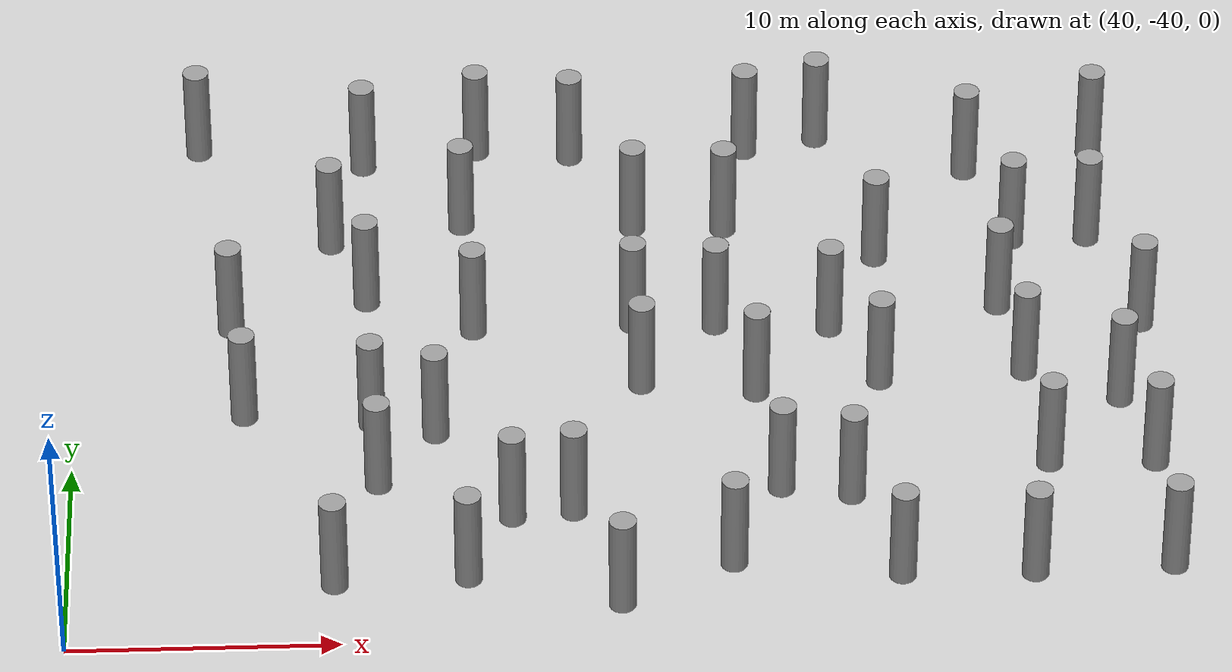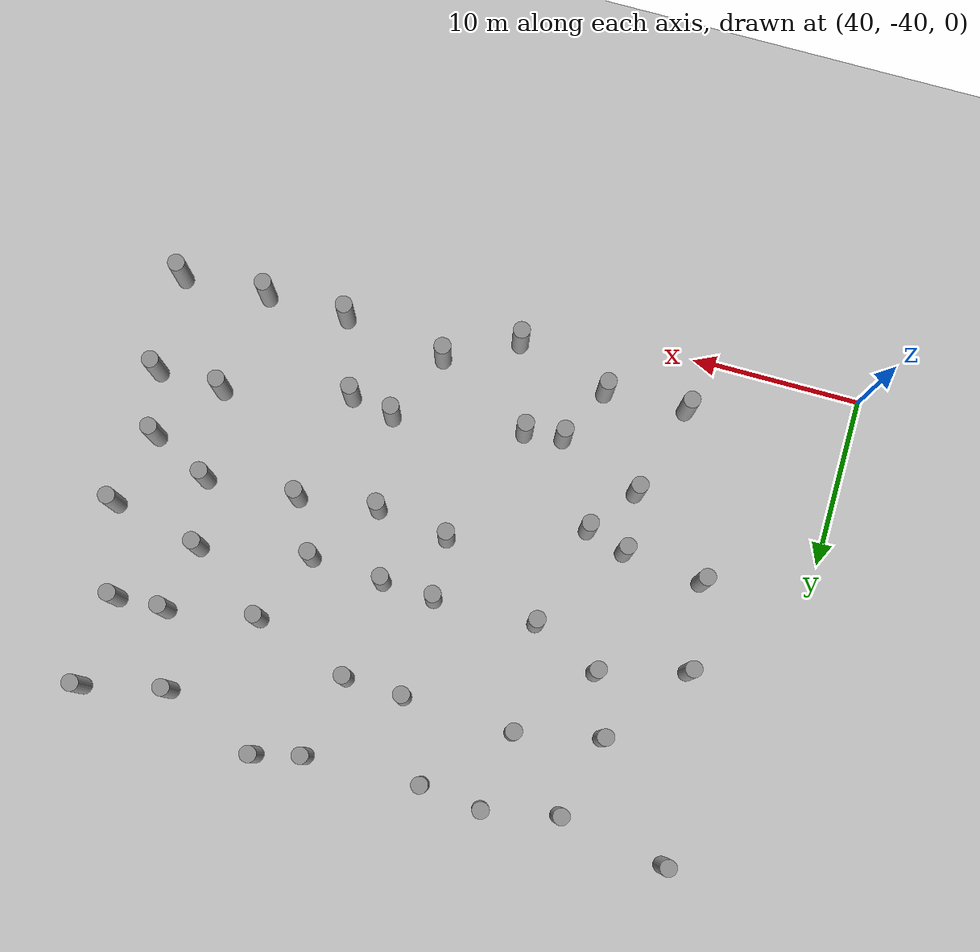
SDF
<sdf version="1.5">
 <world name="circle">
  <model name="ground">
   <static>1</static>
   <link name="link">
    <collision name="collision">
     <geometry><plane><normal>0 0 1</normal><size>100 100</size></plane></geometry>
     <surface><friction><ode><mu>100</mu><mu2>50</mu2></ode></friction></surface>
    </collision>
    <visual name="visual">
     <cast_shadows>0</cast_shadows>
     <geometry><plane><normal>0 0 1</normal><size>100 100</size></plane></geometry>
     <material>
      <script><uri>file://media/materials/scripts/gazebo.material</uri><name>Gazebo/Grey</name></script>
     </material>
    </visual>
    <velocity_decay><linear>0</linear><angular>0</angular></velocity_decay>
   </link>
  </model>
  <model name="unit_cylinder_107">
   <pose>46.3874907189 -27.1581048016 2 3e-06 4e-06 -0</pose>
   <static>1</static>
   <self_collide>1</self_collide>
   <link name="link">
    <inertial>
     <mass>1</mass>
     <inertia><ixx>0.145833</ixx><ixy>0</ixy><ixz>0</ixz><iyy>0.145833</iyy><iyz>0</iyz><izz>0.125</izz></inertia>
    </inertial>
    <collision name="collision">
     <geometry><cylinder><radius>0.5</radius><length>4</length></cylinder></geometry>
    </collision>
    <visual name="visual">
     <geometry><cylinder><radius>0.5</radius><length>4</length></cylinder></geometry>
     <material>
      <script><name>Gazebo/Grey</name><uri>file://media/materials/scripts/gazebo.material</uri></script>
     </material>
    </visual>
    <collision name="cyl_collision">
     <geometry><cylinder><radius>0.5</radius><length>4</length></cylinder></geometry>
    </collision>
    <sensor name="my_contact" type="contact">
     <contact><collision>cyl_collision</collision></contact>
     <update_rate>5</update_rate>
    </sensor>
   </link>
  </model>
  <model name="unit_cylinder_108">
   <pose>45.8426918675 -21.9223942258 2 3e-06 4e-06 -0</pose>
   <static>1</static>
   <self_collide>1</self_collide>
   <link name="link">
    <inertial>
     <mass>1</mass>
     <inertia><ixx>0.145833</ixx><ixy>0</ixy><ixz>0</ixz><iyy>0.145833</iyy><iyz>0</iyz><izz>0.125</izz></inertia>
    </inertial>
    <collision name="collision">
     <geometry><cylinder><radius>0.5</radius><length>4</length></cylinder></geometry>
    </collision>
    <visual name="visual">
     <geometry><cylinder><radius>0.5</radius><length>4</length></cylinder></geometry>
     <material>
      <script><name>Gazebo/Grey</name><uri>file://media/materials/scripts/gazebo.material</uri></script>
     </material>
    </visual>
    <collision name="cyl_collision">
     <geometry><cylinder><radius>0.5</radius><length>4</length></cylinder></geometry>
    </collision>
    <sensor name="my_contact" type="contact">
     <contact><collision>cyl_collision</collision></contact>
     <update_rate>5</update_rate>
    </sensor>
   </link>
  </model>
  <model name="unit_cylinder_110">
   <pose>44.4817383361 -10.8536339094 2 3e-06 4e-06 -0</pose>
   <static>1</static>
   <self_collide>1</self_collide>
   <link name="link">
    <inertial>
     <mass>1</mass>
     <inertia><ixx>0.145833</ixx><ixy>0</ixy><ixz>0</ixz><iyy>0.145833</iyy><iyz>0</iyz><izz>0.125</izz></inertia>
    </inertial>
    <collision name="collision">
     <geometry><cylinder><radius>0.5</radius><length>4</length></cylinder></geometry>
    </collision>
    <visual name="visual">
     <geometry><cylinder><radius>0.5</radius><length>4</length></cylinder></geometry>
     <material>
      <script><name>Gazebo/Grey</name><uri>file://media/materials/scripts/gazebo.material</uri></script>
     </material>
    </visual>
    <collision name="cyl_collision">
     <geometry><cylinder><radius>0.5</radius><length>4</length></cylinder></geometry>
    </collision>
    <sensor name="my_contact" type="contact">
     <contact><collision>cyl_collision</collision></contact>
     <update_rate>5</update_rate>
    </sensor>
   </link>
  </model>
  <model name="unit_cylinder_120">
   <pose>49.7413944222 -36.7876572171 2 3e-06 4e-06 -0</pose>
   <static>1</static>
   <self_collide>1</self_collide>
   <link name="link">
    <inertial>
     <mass>1</mass>
     <inertia><ixx>0.145833</ixx><ixy>0</ixy><ixz>0</ixz><iyy>0.145833</iyy><iyz>0</iyz><izz>0.125</izz></inertia>
    </inertial>
    <collision name="collision">
     <geometry><cylinder><radius>0.5</radius><length>4</length></cylinder></geometry>
    </collision>
    <visual name="visual">
     <geometry><cylinder><radius>0.5</radius><length>4</length></cylinder></geometry>
     <material>
      <script><name>Gazebo/Grey</name><uri>file://media/materials/scripts/gazebo.material</uri></script>
     </material>
    </visual>
    <collision name="cyl_collision">
     <geometry><cylinder><radius>0.5</radius><length>4</length></cylinder></geometry>
    </collision>
    <sensor name="my_contact" type="contact">
     <contact><collision>cyl_collision</collision></contact>
     <update_rate>5</update_rate>
    </sensor>
   </link>
  </model>
  <model name="unit_cylinder_121">
   <pose>51.3746941374 -31.2669775733 2 3e-06 4e-06 -0</pose>
   <static>1</static>
   <self_collide>1</self_collide>
   <link name="link">
    <inertial>
     <mass>1</mass>
     <inertia><ixx>0.145833</ixx><ixy>0</ixy><ixz>0</ixz><iyy>0.145833</iyy><iyz>0</iyz><izz>0.125</izz></inertia>
    </inertial>
    <collision name="collision">
     <geometry><cylinder><radius>0.5</radius><length>4</length></cylinder></geometry>
    </collision>
    <visual name="visual">
     <geometry><cylinder><radius>0.5</radius><length>4</length></cylinder></geometry>
     <material>
      <script><name>Gazebo/Grey</name><uri>file://media/materials/scripts/gazebo.material</uri></script>
     </material>
    </visual>
    <collision name="cyl_collision">
     <geometry><cylinder><radius>0.5</radius><length>4</length></cylinder></geometry>
    </collision>
    <sensor name="my_contact" type="contact">
     <contact><collision>cyl_collision</collision></contact>
     <update_rate>5</update_rate>
    </sensor>
   </link>
  </model>
  <model name="unit_cylinder_122">
   <pose>51.1589791166 -27.7048343813 2 3e-06 4e-06 -0</pose>
   <static>1</static>
   <self_collide>1</self_collide>
   <link name="link">
    <inertial>
     <mass>1</mass>
     <inertia><ixx>0.145833</ixx><ixy>0</ixy><ixz>0</ixz><iyy>0.145833</iyy><iyz>0</iyz><izz>0.125</izz></inertia>
    </inertial>
    <collision name="collision">
     <geometry><cylinder><radius>0.5</radius><length>4</length></cylinder></geometry>
    </collision>
    <visual name="visual">
     <geometry><cylinder><radius>0.5</radius><length>4</length></cylinder></geometry>
     <material>
      <script><name>Gazebo/Grey</name><uri>file://media/materials/scripts/gazebo.material</uri></script>
     </material>
    </visual>
    <collision name="cyl_collision">
     <geometry><cylinder><radius>0.5</radius><length>4</length></cylinder></geometry>
    </collision>
    <sensor name="my_contact" type="contact">
     <contact><collision>cyl_collision</collision></contact>
     <update_rate>5</update_rate>
    </sensor>
   </link>
  </model>
  <model name="unit_cylinder_123">
   <pose>51.014926542 -20.5064562138 2 3e-06 4e-06 -0</pose>
   <static>1</static>
   <self_collide>1</self_collide>
   <link name="link">
    <inertial>
     <mass>1</mass>
     <inertia><ixx>0.145833</ixx><ixy>0</ixy><ixz>0</ixz><iyy>0.145833</iyy><iyz>0</iyz><izz>0.125</izz></inertia>
    </inertial>
    <collision name="collision">
     <geometry><cylinder><radius>0.5</radius><length>4</length></cylinder></geometry>
    </collision>
    <visual name="visual">
     <geometry><cylinder><radius>0.5</radius><length>4</length></cylinder></geometry>
     <material>
      <script><name>Gazebo/Grey</name><uri>file://media/materials/scripts/gazebo.material</uri></script>
     </material>
    </visual>
    <collision name="cyl_collision">
     <geometry><cylinder><radius>0.5</radius><length>4</length></cylinder></geometry>
    </collision>
    <sensor name="my_contact" type="contact">
     <contact><collision>cyl_collision</collision></contact>
     <update_rate>5</update_rate>
    </sensor>
   </link>
  </model>
  <model name="unit_cylinder_124">
   <pose>49.662553382 -16.9407899003 2 3e-06 4e-06 -0</pose>
   <static>1</static>
   <self_collide>1</self_collide>
   <link name="link">
    <inertial>
     <mass>1</mass>
     <inertia><ixx>0.145833</ixx><ixy>0</ixy><ixz>0</ixz><iyy>0.145833</iyy><iyz>0</iyz><izz>0.125</izz></inertia>
    </inertial>
    <collision name="collision">
     <geometry><cylinder><radius>0.5</radius><length>4</length></cylinder></geometry>
    </collision>
    <visual name="visual">
     <geometry><cylinder><radius>0.5</radius><length>4</length></cylinder></geometry>
     <material>
      <script><name>Gazebo/Grey</name><uri>file://media/materials/scripts/gazebo.material</uri></script>
     </material>
    </visual>
    <collision name="cyl_collision">
     <geometry><cylinder><radius>0.5</radius><length>4</length></cylinder></geometry>
    </collision>
    <sensor name="my_contact" type="contact">
     <contact><collision>cyl_collision</collision></contact>
     <update_rate>5</update_rate>
    </sensor>
   </link>
  </model>
  <model name="unit_cylinder_125">
   <pose>50.9366736073 -12.0444536011 2 3e-06 4e-06 -0</pose>
   <static>1</static>
   <self_collide>1</self_collide>
   <link name="link">
    <inertial>
     <mass>1</mass>
     <inertia><ixx>0.145833</ixx><ixy>0</ixy><ixz>0</ixz><iyy>0.145833</iyy><iyz>0</iyz><izz>0.125</izz></inertia>
    </inertial>
    <collision name="collision">
     <geometry><cylinder><radius>0.5</radius><length>4</length></cylinder></geometry>
    </collision>
    <visual name="visual">
     <geometry><cylinder><radius>0.5</radius><length>4</length></cylinder></geometry>
     <material>
      <script><name>Gazebo/Grey</name><uri>file://media/materials/scripts/gazebo.material</uri></script>
     </material>
    </visual>
    <collision name="cyl_collision">
     <geometry><cylinder><radius>0.5</radius><length>4</length></cylinder></geometry>
    </collision>
    <sensor name="my_contact" type="contact">
     <contact><collision>cyl_collision</collision></contact>
     <update_rate>5</update_rate>
    </sensor>
   </link>
  </model>
  <model name="unit_cylinder_135">
   <pose>54.6212750339 -36.5871555204 2 3e-06 4e-06 -0</pose>
   <static>1</static>
   <self_collide>1</self_collide>
   <link name="link">
    <inertial>
     <mass>1</mass>
     <inertia><ixx>0.145833</ixx><ixy>0</ixy><ixz>0</ixz><iyy>0.145833</iyy><iyz>0</iyz><izz>0.125</izz></inertia>
    </inertial>
    <collision name="collision">
     <geometry><cylinder><radius>0.5</radius><length>4</length></cylinder></geometry>
    </collision>
    <visual name="visual">
     <geometry><cylinder><radius>0.5</radius><length>4</length></cylinder></geometry>
     <material>
      <script><name>Gazebo/Grey</name><uri>file://media/materials/scripts/gazebo.material</uri></script>
     </material>
    </visual>
    <collision name="cyl_collision">
     <geometry><cylinder><radius>0.5</radius><length>4</length></cylinder></geometry>
    </collision>
    <sensor name="my_contact" type="contact">
     <contact><collision>cyl_collision</collision></contact>
     <update_rate>5</update_rate>
    </sensor>
   </link>
  </model>
  <model name="unit_cylinder_136">
   <pose>56.2988340755 -33.2872383984 2 3e-06 4e-06 -0</pose>
   <static>1</static>
   <self_collide>1</self_collide>
   <link name="link">
    <inertial>
     <mass>1</mass>
     <inertia><ixx>0.145833</ixx><ixy>0</ixy><ixz>0</ixz><iyy>0.145833</iyy><iyz>0</iyz><izz>0.125</izz></inertia>
    </inertial>
    <collision name="collision">
     <geometry><cylinder><radius>0.5</radius><length>4</length></cylinder></geometry>
    </collision>
    <visual name="visual">
     <geometry><cylinder><radius>0.5</radius><length>4</length></cylinder></geometry>
     <material>
      <script><name>Gazebo/Grey</name><uri>file://media/materials/scripts/gazebo.material</uri></script>
     </material>
    </visual>
    <collision name="cyl_collision">
     <geometry><cylinder><radius>0.5</radius><length>4</length></cylinder></geometry>
    </collision>
    <sensor name="my_contact" type="contact">
     <contact><collision>cyl_collision</collision></contact>
     <update_rate>5</update_rate>
    </sensor>
   </link>
  </model>
  <model name="unit_cylinder_137">
   <pose>53.5411832824 -28.4338493766 2 3e-06 4e-06 -0</pose>
   <static>1</static>
   <self_collide>1</self_collide>
   <link name="link">
    <inertial>
     <mass>1</mass>
     <inertia><ixx>0.145833</ixx><ixy>0</ixy><ixz>0</ixz><iyy>0.145833</iyy><iyz>0</iyz><izz>0.125</izz></inertia>
    </inertial>
    <collision name="collision">
     <geometry><cylinder><radius>0.5</radius><length>4</length></cylinder></geometry>
    </collision>
    <visual name="visual">
     <geometry><cylinder><radius>0.5</radius><length>4</length></cylinder></geometry>
     <material>
      <script><name>Gazebo/Grey</name><uri>file://media/materials/scripts/gazebo.material</uri></script>
     </material>
    </visual>
    <collision name="cyl_collision">
     <geometry><cylinder><radius>0.5</radius><length>4</length></cylinder></geometry>
    </collision>
    <sensor name="my_contact" type="contact">
     <contact><collision>cyl_collision</collision></contact>
     <update_rate>5</update_rate>
    </sensor>
   </link>
  </model>
  <model name="unit_cylinder_138">
   <pose>55.0625468386 -22.3628474425 2 3e-06 4e-06 -0</pose>
   <static>1</static>
   <self_collide>1</self_collide>
   <link name="link">
    <inertial>
     <mass>1</mass>
     <inertia><ixx>0.145833</ixx><ixy>0</ixy><ixz>0</ixz><iyy>0.145833</iyy><iyz>0</iyz><izz>0.125</izz></inertia>
    </inertial>
    <collision name="collision">
     <geometry><cylinder><radius>0.5</radius><length>4</length></cylinder></geometry>
    </collision>
    <visual name="visual">
     <geometry><cylinder><radius>0.5</radius><length>4</length></cylinder></geometry>
     <material>
      <script><name>Gazebo/Grey</name><uri>file://media/materials/scripts/gazebo.material</uri></script>
     </material>
    </visual>
    <collision name="cyl_collision">
     <geometry><cylinder><radius>0.5</radius><length>4</length></cylinder></geometry>
    </collision>
    <sensor name="my_contact" type="contact">
     <contact><collision>cyl_collision</collision></contact>
     <update_rate>5</update_rate>
    </sensor>
   </link>
  </model>
  <model name="unit_cylinder_139">
   <pose>54.7165384907 -15.9233528291 2 3e-06 4e-06 -0</pose>
   <static>1</static>
   <self_collide>1</self_collide>
   <link name="link">
    <inertial>
     <mass>1</mass>
     <inertia><ixx>0.145833</ixx><ixy>0</ixy><ixz>0</ixz><iyy>0.145833</iyy><iyz>0</iyz><izz>0.125</izz></inertia>
    </inertial>
    <collision name="collision">
     <geometry><cylinder><radius>0.5</radius><length>4</length></cylinder></geometry>
    </collision>
    <visual name="visual">
     <geometry><cylinder><radius>0.5</radius><length>4</length></cylinder></geometry>
     <material>
      <script><name>Gazebo/Grey</name><uri>file://media/materials/scripts/gazebo.material</uri></script>
     </material>
    </visual>
    <collision name="cyl_collision">
     <geometry><cylinder><radius>0.5</radius><length>4</length></cylinder></geometry>
    </collision>
    <sensor name="my_contact" type="contact">
     <contact><collision>cyl_collision</collision></contact>
     <update_rate>5</update_rate>
    </sensor>
   </link>
  </model>
  <model name="unit_cylinder_140">
   <pose>55.3819771013 -11.2132499554 2 3e-06 4e-06 -0</pose>
   <static>1</static>
   <self_collide>1</self_collide>
   <link name="link">
    <inertial>
     <mass>1</mass>
     <inertia><ixx>0.145833</ixx><ixy>0</ixy><ixz>0</ixz><iyy>0.145833</iyy><iyz>0</iyz><izz>0.125</izz></inertia>
    </inertial>
    <collision name="collision">
     <geometry><cylinder><radius>0.5</radius><length>4</length></cylinder></geometry>
    </collision>
    <visual name="visual">
     <geometry><cylinder><radius>0.5</radius><length>4</length></cylinder></geometry>
     <material>
      <script><name>Gazebo/Grey</name><uri>file://media/materials/scripts/gazebo.material</uri></script>
     </material>
    </visual>
    <collision name="cyl_collision">
     <geometry><cylinder><radius>0.5</radius><length>4</length></cylinder></geometry>
    </collision>
    <sensor name="my_contact" type="contact">
     <contact><collision>cyl_collision</collision></contact>
     <update_rate>5</update_rate>
    </sensor>
   </link>
  </model>
  <model name="unit_cylinder_150">
   <pose>60.1733141127 -38.1820388899 2 3e-06 4e-06 -0</pose>
   <static>1</static>
   <self_collide>1</self_collide>
   <link name="link">
    <inertial>
     <mass>1</mass>
     <inertia><ixx>0.145833</ixx><ixy>0</ixy><ixz>0</ixz><iyy>0.145833</iyy><iyz>0</iyz><izz>0.125</izz></inertia>
    </inertial>
    <collision name="collision">
     <geometry><cylinder><radius>0.5</radius><length>4</length></cylinder></geometry>
    </collision>
    <visual name="visual">
     <geometry><cylinder><radius>0.5</radius><length>4</length></cylinder></geometry>
     <material>
      <script><name>Gazebo/Grey</name><uri>file://media/materials/scripts/gazebo.material</uri></script>
     </material>
    </visual>
    <collision name="cyl_collision">
     <geometry><cylinder><radius>0.5</radius><length>4</length></cylinder></geometry>
    </collision>
    <sensor name="my_contact" type="contact">
     <contact><collision>cyl_collision</collision></contact>
     <update_rate>5</update_rate>
    </sensor>
   </link>
  </model>
  <model name="unit_cylinder_151">
   <pose>58.5669416661 -33.0339567454 2 3e-06 4e-06 -0</pose>
   <static>1</static>
   <self_collide>1</self_collide>
   <link name="link">
    <inertial>
     <mass>1</mass>
     <inertia><ixx>0.145833</ixx><ixy>0</ixy><ixz>0</ixz><iyy>0.145833</iyy><iyz>0</iyz><izz>0.125</izz></inertia>
    </inertial>
    <collision name="collision">
     <geometry><cylinder><radius>0.5</radius><length>4</length></cylinder></geometry>
    </collision>
    <visual name="visual">
     <geometry><cylinder><radius>0.5</radius><length>4</length></cylinder></geometry>
     <material>
      <script><name>Gazebo/Grey</name><uri>file://media/materials/scripts/gazebo.material</uri></script>
     </material>
    </visual>
    <collision name="cyl_collision">
     <geometry><cylinder><radius>0.5</radius><length>4</length></cylinder></geometry>
    </collision>
    <sensor name="my_contact" type="contact">
     <contact><collision>cyl_collision</collision></contact>
     <update_rate>5</update_rate>
    </sensor>
   </link>
  </model>
  <model name="unit_cylinder_152">
   <pose>61.3420696736 -25.8255776743 2 3e-06 4e-06 -0</pose>
   <static>1</static>
   <self_collide>1</self_collide>
   <link name="link">
    <inertial>
     <mass>1</mass>
     <inertia><ixx>0.145833</ixx><ixy>0</ixy><ixz>0</ixz><iyy>0.145833</iyy><iyz>0</iyz><izz>0.125</izz></inertia>
    </inertial>
    <collision name="collision">
     <geometry><cylinder><radius>0.5</radius><length>4</length></cylinder></geometry>
    </collision>
    <visual name="visual">
     <geometry><cylinder><radius>0.5</radius><length>4</length></cylinder></geometry>
     <material>
      <script><name>Gazebo/Grey</name><uri>file://media/materials/scripts/gazebo.material</uri></script>
     </material>
    </visual>
    <collision name="cyl_collision">
     <geometry><cylinder><radius>0.5</radius><length>4</length></cylinder></geometry>
    </collision>
    <sensor name="my_contact" type="contact">
     <contact><collision>cyl_collision</collision></contact>
     <update_rate>5</update_rate>
    </sensor>
   </link>
  </model>
  <model name="unit_cylinder_153">
   <pose>61.1366335046 -22.1949658576 2 3e-06 4e-06 -0</pose>
   <static>1</static>
   <self_collide>1</self_collide>
   <link name="link">
    <inertial>
     <mass>1</mass>
     <inertia><ixx>0.145833</ixx><ixy>0</ixy><ixz>0</ixz><iyy>0.145833</iyy><iyz>0</iyz><izz>0.125</izz></inertia>
    </inertial>
    <collision name="collision">
     <geometry><cylinder><radius>0.5</radius><length>4</length></cylinder></geometry>
    </collision>
    <visual name="visual">
     <geometry><cylinder><radius>0.5</radius><length>4</length></cylinder></geometry>
     <material>
      <script><name>Gazebo/Grey</name><uri>file://media/materials/scripts/gazebo.material</uri></script>
     </material>
    </visual>
    <collision name="cyl_collision">
     <geometry><cylinder><radius>0.5</radius><length>4</length></cylinder></geometry>
    </collision>
    <sensor name="my_contact" type="contact">
     <contact><collision>cyl_collision</collision></contact>
     <update_rate>5</update_rate>
    </sensor>
   </link>
  </model>
  <model name="unit_cylinder_154">
   <pose>61.3497429173 -16.2729520141 2 3e-06 4e-06 -0</pose>
   <static>1</static>
   <self_collide>1</self_collide>
   <link name="link">
    <inertial>
     <mass>1</mass>
     <inertia><ixx>0.145833</ixx><ixy>0</ixy><ixz>0</ixz><iyy>0.145833</iyy><iyz>0</iyz><izz>0.125</izz></inertia>
    </inertial>
    <collision name="collision">
     <geometry><cylinder><radius>0.5</radius><length>4</length></cylinder></geometry>
    </collision>
    <visual name="visual">
     <geometry><cylinder><radius>0.5</radius><length>4</length></cylinder></geometry>
     <material>
      <script><name>Gazebo/Grey</name><uri>file://media/materials/scripts/gazebo.material</uri></script>
     </material>
    </visual>
    <collision name="cyl_collision">
     <geometry><cylinder><radius>0.5</radius><length>4</length></cylinder></geometry>
    </collision>
    <sensor name="my_contact" type="contact">
     <contact><collision>cyl_collision</collision></contact>
     <update_rate>5</update_rate>
    </sensor>
   </link>
  </model>
  <model name="unit_cylinder_155">
   <pose>59.040567558 -11.6699047068 2 3e-06 4e-06 -0</pose>
   <static>1</static>
   <self_collide>1</self_collide>
   <link name="link">
    <inertial>
     <mass>1</mass>
     <inertia><ixx>0.145833</ixx><ixy>0</ixy><ixz>0</ixz><iyy>0.145833</iyy><iyz>0</iyz><izz>0.125</izz></inertia>
    </inertial>
    <collision name="collision">
     <geometry><cylinder><radius>0.5</radius><length>4</length></cylinder></geometry>
    </collision>
    <visual name="visual">
     <geometry><cylinder><radius>0.5</radius><length>4</length></cylinder></geometry>
     <material>
      <script><name>Gazebo/Grey</name><uri>file://media/materials/scripts/gazebo.material</uri></script>
     </material>
    </visual>
    <collision name="cyl_collision">
     <geometry><cylinder><radius>0.5</radius><length>4</length></cylinder></geometry>
    </collision>
    <sensor name="my_contact" type="contact">
     <contact><collision>cyl_collision</collision></contact>
     <update_rate>5</update_rate>
    </sensor>
   </link>
  </model>
  <model name="unit_cylinder_165">
   <pose>64.3275091017 -36.0978986562 2 3e-06 4e-06 -0</pose>
   <static>1</static>
   <self_collide>1</self_collide>
   <link name="link">
    <inertial>
     <mass>1</mass>
     <inertia><ixx>0.145833</ixx><ixy>0</ixy><ixz>0</ixz><iyy>0.145833</iyy><iyz>0</iyz><izz>0.125</izz></inertia>
    </inertial>
    <collision name="collision">
     <geometry><cylinder><radius>0.5</radius><length>4</length></cylinder></geometry>
    </collision>
    <visual name="visual">
     <geometry><cylinder><radius>0.5</radius><length>4</length></cylinder></geometry>
     <material>
      <script><name>Gazebo/Grey</name><uri>file://media/materials/scripts/gazebo.material</uri></script>
     </material>
    </visual>
    <collision name="cyl_collision">
     <geometry><cylinder><radius>0.5</radius><length>4</length></cylinder></geometry>
    </collision>
    <sensor name="my_contact" type="contact">
     <contact><collision>cyl_collision</collision></contact>
     <update_rate>5</update_rate>
    </sensor>
   </link>
  </model>
  <model name="unit_cylinder_166">
   <pose>66.2854279794 -31.974651802 2 3e-06 4e-06 -0</pose>
   <static>1</static>
   <self_collide>1</self_collide>
   <link name="link">
    <inertial>
     <mass>1</mass>
     <inertia><ixx>0.145833</ixx><ixy>0</ixy><ixz>0</ixz><iyy>0.145833</iyy><iyz>0</iyz><izz>0.125</izz></inertia>
    </inertial>
    <collision name="collision">
     <geometry><cylinder><radius>0.5</radius><length>4</length></cylinder></geometry>
    </collision>
    <visual name="visual">
     <geometry><cylinder><radius>0.5</radius><length>4</length></cylinder></geometry>
     <material>
      <script><name>Gazebo/Grey</name><uri>file://media/materials/scripts/gazebo.material</uri></script>
     </material>
    </visual>
    <collision name="cyl_collision">
     <geometry><cylinder><radius>0.5</radius><length>4</length></cylinder></geometry>
    </collision>
    <sensor name="my_contact" type="contact">
     <contact><collision>cyl_collision</collision></contact>
     <update_rate>5</update_rate>
    </sensor>
   </link>
  </model>
  <model name="unit_cylinder_167">
   <pose>65.6261860563 -26.4384570644 2 3e-06 4e-06 -0</pose>
   <static>1</static>
   <self_collide>1</self_collide>
   <link name="link">
    <inertial>
     <mass>1</mass>
     <inertia><ixx>0.145833</ixx><ixy>0</ixy><ixz>0</ixz><iyy>0.145833</iyy><iyz>0</iyz><izz>0.125</izz></inertia>
    </inertial>
    <collision name="collision">
     <geometry><cylinder><radius>0.5</radius><length>4</length></cylinder></geometry>
    </collision>
    <visual name="visual">
     <geometry><cylinder><radius>0.5</radius><length>4</length></cylinder></geometry>
     <material>
      <script><name>Gazebo/Grey</name><uri>file://media/materials/scripts/gazebo.material</uri></script>
     </material>
    </visual>
    <collision name="cyl_collision">
     <geometry><cylinder><radius>0.5</radius><length>4</length></cylinder></geometry>
    </collision>
    <sensor name="my_contact" type="contact">
     <contact><collision>cyl_collision</collision></contact>
     <update_rate>5</update_rate>
    </sensor>
   </link>
  </model>
  <model name="unit_cylinder_168">
   <pose>64.2687053161 -22.398757599 2 3e-06 4e-06 -0</pose>
   <static>1</static>
   <self_collide>1</self_collide>
   <link name="link">
    <inertial>
     <mass>1</mass>
     <inertia><ixx>0.145833</ixx><ixy>0</ixy><ixz>0</ixz><iyy>0.145833</iyy><iyz>0</iyz><izz>0.125</izz></inertia>
    </inertial>
    <collision name="collision">
     <geometry><cylinder><radius>0.5</radius><length>4</length></cylinder></geometry>
    </collision>
    <visual name="visual">
     <geometry><cylinder><radius>0.5</radius><length>4</length></cylinder></geometry>
     <material>
      <script><name>Gazebo/Grey</name><uri>file://media/materials/scripts/gazebo.material</uri></script>
     </material>
    </visual>
    <collision name="cyl_collision">
     <geometry><cylinder><radius>0.5</radius><length>4</length></cylinder></geometry>
    </collision>
    <sensor name="my_contact" type="contact">
     <contact><collision>cyl_collision</collision></contact>
     <update_rate>5</update_rate>
    </sensor>
   </link>
  </model>
  <model name="unit_cylinder_169">
   <pose>64.8537334388 -16.4577099184 2 3e-06 4e-06 -0</pose>
   <static>1</static>
   <self_collide>1</self_collide>
   <link name="link">
    <inertial>
     <mass>1</mass>
     <inertia><ixx>0.145833</ixx><ixy>0</ixy><ixz>0</ixz><iyy>0.145833</iyy><iyz>0</iyz><izz>0.125</izz></inertia>
    </inertial>
    <collision name="collision">
     <geometry><cylinder><radius>0.5</radius><length>4</length></cylinder></geometry>
    </collision>
    <visual name="visual">
     <geometry><cylinder><radius>0.5</radius><length>4</length></cylinder></geometry>
     <material>
      <script><name>Gazebo/Grey</name><uri>file://media/materials/scripts/gazebo.material</uri></script>
     </material>
    </visual>
    <collision name="cyl_collision">
     <geometry><cylinder><radius>0.5</radius><length>4</length></cylinder></geometry>
    </collision>
    <sensor name="my_contact" type="contact">
     <contact><collision>cyl_collision</collision></contact>
     <update_rate>5</update_rate>
    </sensor>
   </link>
  </model>
  <model name="unit_cylinder_170">
   <pose>65.9203072738 -11.528102753 2 3e-06 4e-06 -0</pose>
   <static>1</static>
   <self_collide>1</self_collide>
   <link name="link">
    <inertial>
     <mass>1</mass>
     <inertia><ixx>0.145833</ixx><ixy>0</ixy><ixz>0</ixz><iyy>0.145833</iyy><iyz>0</iyz><izz>0.125</izz></inertia>
    </inertial>
    <collision name="collision">
     <geometry><cylinder><radius>0.5</radius><length>4</length></cylinder></geometry>
    </collision>
    <visual name="visual">
     <geometry><cylinder><radius>0.5</radius><length>4</length></cylinder></geometry>
     <material>
      <script><name>Gazebo/Grey</name><uri>file://media/materials/scripts/gazebo.material</uri></script>
     </material>
    </visual>
    <collision name="cyl_collision">
     <geometry><cylinder><radius>0.5</radius><length>4</length></cylinder></geometry>
    </collision>
    <sensor name="my_contact" type="contact">
     <contact><collision>cyl_collision</collision></contact>
     <update_rate>5</update_rate>
    </sensor>
   </link>
  </model>
  <model name="unit_cylinder_180">
   <pose>70.433735117 -36.9680883927 2 3e-06 4e-06 -0</pose>
   <static>1</static>
   <self_collide>1</self_collide>
   <link name="link">
    <inertial>
     <mass>1</mass>
     <inertia><ixx>0.145833</ixx><ixy>0</ixy><ixz>0</ixz><iyy>0.145833</iyy><iyz>0</iyz><izz>0.125</izz></inertia>
    </inertial>
    <collision name="collision">
     <geometry><cylinder><radius>0.5</radius><length>4</length></cylinder></geometry>
    </collision>
    <visual name="visual">
     <geometry><cylinder><radius>0.5</radius><length>4</length></cylinder></geometry>
     <material>
      <script><name>Gazebo/Grey</name><uri>file://media/materials/scripts/gazebo.material</uri></script>
     </material>
    </visual>
    <collision name="cyl_collision">
     <geometry><cylinder><radius>0.5</radius><length>4</length></cylinder></geometry>
    </collision>
    <sensor name="my_contact" type="contact">
     <contact><collision>cyl_collision</collision></contact>
     <update_rate>5</update_rate>
    </sensor>
   </link>
  </model>
  <model name="unit_cylinder_181">
   <pose>68.8673929311 -32.4838552752 2 3e-06 4e-06 -0</pose>
   <static>1</static>
   <self_collide>1</self_collide>
   <link name="link">
    <inertial>
     <mass>1</mass>
     <inertia><ixx>0.145833</ixx><ixy>0</ixy><ixz>0</ixz><iyy>0.145833</iyy><iyz>0</iyz><izz>0.125</izz></inertia>
    </inertial>
    <collision name="collision">
     <geometry><cylinder><radius>0.5</radius><length>4</length></cylinder></geometry>
    </collision>
    <visual name="visual">
     <geometry><cylinder><radius>0.5</radius><length>4</length></cylinder></geometry>
     <material>
      <script><name>Gazebo/Grey</name><uri>file://media/materials/scripts/gazebo.material</uri></script>
     </material>
    </visual>
    <collision name="cyl_collision">
     <geometry><cylinder><radius>0.5</radius><length>4</length></cylinder></geometry>
    </collision>
    <sensor name="my_contact" type="contact">
     <contact><collision>cyl_collision</collision></contact>
     <update_rate>5</update_rate>
    </sensor>
   </link>
  </model>
  <model name="unit_cylinder_182">
   <pose>70.3246862795 -25.8973740938 2 3e-06 4e-06 -0</pose>
   <static>1</static>
   <self_collide>1</self_collide>
   <link name="link">
    <inertial>
     <mass>1</mass>
     <inertia><ixx>0.145833</ixx><ixy>0</ixy><ixz>0</ixz><iyy>0.145833</iyy><iyz>0</iyz><izz>0.125</izz></inertia>
    </inertial>
    <collision name="collision">
     <geometry><cylinder><radius>0.5</radius><length>4</length></cylinder></geometry>
    </collision>
    <visual name="visual">
     <geometry><cylinder><radius>0.5</radius><length>4</length></cylinder></geometry>
     <material>
      <script><name>Gazebo/Grey</name><uri>file://media/materials/scripts/gazebo.material</uri></script>
     </material>
    </visual>
    <collision name="cyl_collision">
     <geometry><cylinder><radius>0.5</radius><length>4</length></cylinder></geometry>
    </collision>
    <sensor name="my_contact" type="contact">
     <contact><collision>cyl_collision</collision></contact>
     <update_rate>5</update_rate>
    </sensor>
   </link>
  </model>
  <model name="unit_cylinder_183">
   <pose>68.605975999 -22.6986135874 2 3e-06 4e-06 -0</pose>
   <static>1</static>
   <self_collide>1</self_collide>
   <link name="link">
    <inertial>
     <mass>1</mass>
     <inertia><ixx>0.145833</ixx><ixy>0</ixy><ixz>0</ixz><iyy>0.145833</iyy><iyz>0</iyz><izz>0.125</izz></inertia>
    </inertial>
    <collision name="collision">
     <geometry><cylinder><radius>0.5</radius><length>4</length></cylinder></geometry>
    </collision>
    <visual name="visual">
     <geometry><cylinder><radius>0.5</radius><length>4</length></cylinder></geometry>
     <material>
      <script><name>Gazebo/Grey</name><uri>file://media/materials/scripts/gazebo.material</uri></script>
     </material>
    </visual>
    <collision name="cyl_collision">
     <geometry><cylinder><radius>0.5</radius><length>4</length></cylinder></geometry>
    </collision>
    <sensor name="my_contact" type="contact">
     <contact><collision>cyl_collision</collision></contact>
     <update_rate>5</update_rate>
    </sensor>
   </link>
  </model>
  <model name="unit_cylinder_184">
   <pose>70.6087930788 -18.4701233151 2 3e-06 4e-06 -0</pose>
   <static>1</static>
   <self_collide>1</self_collide>
   <link name="link">
    <inertial>
     <mass>1</mass>
     <inertia><ixx>0.145833</ixx><ixy>0</ixy><ixz>0</ixz><iyy>0.145833</iyy><iyz>0</iyz><izz>0.125</izz></inertia>
    </inertial>
    <collision name="collision">
     <geometry><cylinder><radius>0.5</radius><length>4</length></cylinder></geometry>
    </collision>
    <visual name="visual">
     <geometry><cylinder><radius>0.5</radius><length>4</length></cylinder></geometry>
     <material>
      <script><name>Gazebo/Grey</name><uri>file://media/materials/scripts/gazebo.material</uri></script>
     </material>
    </visual>
    <collision name="cyl_collision">
     <geometry><cylinder><radius>0.5</radius><length>4</length></cylinder></geometry>
    </collision>
    <sensor name="my_contact" type="contact">
     <contact><collision>cyl_collision</collision></contact>
     <update_rate>5</update_rate>
    </sensor>
   </link>
  </model>
  <model name="unit_cylinder_185">
   <pose>68.7600179219 -10.8577651402 2 3e-06 4e-06 -0</pose>
   <static>1</static>
   <self_collide>1</self_collide>
   <link name="link">
    <inertial>
     <mass>1</mass>
     <inertia><ixx>0.145833</ixx><ixy>0</ixy><ixz>0</ixz><iyy>0.145833</iyy><iyz>0</iyz><izz>0.125</izz></inertia>
    </inertial>
    <collision name="collision">
     <geometry><cylinder><radius>0.5</radius><length>4</length></cylinder></geometry>
    </collision>
    <visual name="visual">
     <geometry><cylinder><radius>0.5</radius><length>4</length></cylinder></geometry>
     <material>
      <script><name>Gazebo/Grey</name><uri>file://media/materials/scripts/gazebo.material</uri></script>
     </material>
    </visual>
    <collision name="cyl_collision">
     <geometry><cylinder><radius>0.5</radius><length>4</length></cylinder></geometry>
    </collision>
    <sensor name="my_contact" type="contact">
     <contact><collision>cyl_collision</collision></contact>
     <update_rate>5</update_rate>
    </sensor>
   </link>
  </model>
  <model name="unit_cylinder_195">
   <pose>75.2795465156 -37.0348812575 2 3e-06 4e-06 -0</pose>
   <static>1</static>
   <self_collide>1</self_collide>
   <link name="link">
    <inertial>
     <mass>1</mass>
     <inertia><ixx>0.145833</ixx><ixy>0</ixy><ixz>0</ixz><iyy>0.145833</iyy><iyz>0</iyz><izz>0.125</izz></inertia>
    </inertial>
    <collision name="collision">
     <geometry><cylinder><radius>0.5</radius><length>4</length></cylinder></geometry>
    </collision>
    <visual name="visual">
     <geometry><cylinder><radius>0.5</radius><length>4</length></cylinder></geometry>
     <material>
      <script><name>Gazebo/Grey</name><uri>file://media/materials/scripts/gazebo.material</uri></script>
     </material>
    </visual>
    <collision name="cyl_collision">
     <geometry><cylinder><radius>0.5</radius><length>4</length></cylinder></geometry>
    </collision>
    <sensor name="my_contact" type="contact">
     <contact><collision>cyl_collision</collision></contact>
     <update_rate>5</update_rate>
    </sensor>
   </link>
  </model>
  <model name="unit_cylinder_196">
   <pose>76.3288932581 -30.9045881593 2 3e-06 4e-06 -0</pose>
   <static>1</static>
   <self_collide>1</self_collide>
   <link name="link">
    <inertial>
     <mass>1</mass>
     <inertia><ixx>0.145833</ixx><ixy>0</ixy><ixz>0</ixz><iyy>0.145833</iyy><iyz>0</iyz><izz>0.125</izz></inertia>
    </inertial>
    <collision name="collision">
     <geometry><cylinder><radius>0.5</radius><length>4</length></cylinder></geometry>
    </collision>
    <visual name="visual">
     <geometry><cylinder><radius>0.5</radius><length>4</length></cylinder></geometry>
     <material>
      <script><name>Gazebo/Grey</name><uri>file://media/materials/scripts/gazebo.material</uri></script>
     </material>
    </visual>
    <collision name="cyl_collision">
     <geometry><cylinder><radius>0.5</radius><length>4</length></cylinder></geometry>
    </collision>
    <sensor name="my_contact" type="contact">
     <contact><collision>cyl_collision</collision></contact>
     <update_rate>5</update_rate>
    </sensor>
   </link>
  </model>
  <model name="unit_cylinder_197">
   <pose>75.8122918461 -25.5573892058 2 3e-06 4e-06 -0</pose>
   <static>1</static>
   <self_collide>1</self_collide>
   <link name="link">
    <inertial>
     <mass>1</mass>
     <inertia><ixx>0.145833</ixx><ixy>0</ixy><ixz>0</ixz><iyy>0.145833</iyy><iyz>0</iyz><izz>0.125</izz></inertia>
    </inertial>
    <collision name="collision">
     <geometry><cylinder><radius>0.5</radius><length>4</length></cylinder></geometry>
    </collision>
    <visual name="visual">
     <geometry><cylinder><radius>0.5</radius><length>4</length></cylinder></geometry>
     <material>
      <script><name>Gazebo/Grey</name><uri>file://media/materials/scripts/gazebo.material</uri></script>
     </material>
    </visual>
    <collision name="cyl_collision">
     <geometry><cylinder><radius>0.5</radius><length>4</length></cylinder></geometry>
    </collision>
    <sensor name="my_contact" type="contact">
     <contact><collision>cyl_collision</collision></contact>
     <update_rate>5</update_rate>
    </sensor>
   </link>
  </model>
  <model name="unit_cylinder_198">
   <pose>75.1211164577 -21.5940696358 2 3e-06 4e-06 -0</pose>
   <static>1</static>
   <self_collide>1</self_collide>
   <link name="link">
    <inertial>
     <mass>1</mass>
     <inertia><ixx>0.145833</ixx><ixy>0</ixy><ixz>0</ixz><iyy>0.145833</iyy><iyz>0</iyz><izz>0.125</izz></inertia>
    </inertial>
    <collision name="collision">
     <geometry><cylinder><radius>0.5</radius><length>4</length></cylinder></geometry>
    </collision>
    <visual name="visual">
     <geometry><cylinder><radius>0.5</radius><length>4</length></cylinder></geometry>
     <material>
      <script><name>Gazebo/Grey</name><uri>file://media/materials/scripts/gazebo.material</uri></script>
     </material>
    </visual>
    <collision name="cyl_collision">
     <geometry><cylinder><radius>0.5</radius><length>4</length></cylinder></geometry>
    </collision>
    <sensor name="my_contact" type="contact">
     <contact><collision>cyl_collision</collision></contact>
     <update_rate>5</update_rate>
    </sensor>
   </link>
  </model>
  <model name="unit_cylinder_199">
   <pose>75.9553872908 -17.5881214334 2 3e-06 4e-06 -0</pose>
   <static>1</static>
   <self_collide>1</self_collide>
   <link name="link">
    <inertial>
     <mass>1</mass>
     <inertia><ixx>0.145833</ixx><ixy>0</ixy><ixz>0</ixz><iyy>0.145833</iyy><iyz>0</iyz><izz>0.125</izz></inertia>
    </inertial>
    <collision name="collision">
     <geometry><cylinder><radius>0.5</radius><length>4</length></cylinder></geometry>
    </collision>
    <visual name="visual">
     <geometry><cylinder><radius>0.5</radius><length>4</length></cylinder></geometry>
     <material>
      <script><name>Gazebo/Grey</name><uri>file://media/materials/scripts/gazebo.material</uri></script>
     </material>
    </visual>
    <collision name="cyl_collision">
     <geometry><cylinder><radius>0.5</radius><length>4</length></cylinder></geometry>
    </collision>
    <sensor name="my_contact" type="contact">
     <contact><collision>cyl_collision</collision></contact>
     <update_rate>5</update_rate>
    </sensor>
   </link>
  </model>
  <model name="unit_cylinder_200">
   <pose>74.4831165375 -13.1568039341 2 3e-06 4e-06 -0</pose>
   <static>1</static>
   <self_collide>1</self_collide>
   <link name="link">
    <inertial>
     <mass>1</mass>
     <inertia><ixx>0.145833</ixx><ixy>0</ixy><ixz>0</ixz><iyy>0.145833</iyy><iyz>0</iyz><izz>0.125</izz></inertia>
    </inertial>
    <collision name="collision">
     <geometry><cylinder><radius>0.5</radius><length>4</length></cylinder></geometry>
    </collision>
    <visual name="visual">
     <geometry><cylinder><radius>0.5</radius><length>4</length></cylinder></geometry>
     <material>
      <script><name>Gazebo/Grey</name><uri>file://media/materials/scripts/gazebo.material</uri></script>
     </material>
    </visual>
    <collision name="cyl_collision">
     <geometry><cylinder><radius>0.5</radius><length>4</length></cylinder></geometry>
    </collision>
    <sensor name="my_contact" type="contact">
     <contact><collision>cyl_collision</collision></contact>
     <update_rate>5</update_rate>
    </sensor>
   </link>
  </model>
  <model name="unit_cylinder_210">
   <pose>80.3973390961 -36.8240049183 2 3e-06 4e-06 -0</pose>
   <static>1</static>
   <self_collide>1</self_collide>
   <link name="link">
    <inertial>
     <mass>1</mass>
     <inertia><ixx>0.145833</ixx><ixy>0</ixy><ixz>0</ixz><iyy>0.145833</iyy><iyz>0</iyz><izz>0.125</izz></inertia>
    </inertial>
    <collision name="collision">
     <geometry><cylinder><radius>0.5</radius><length>4</length></cylinder></geometry>
    </collision>
    <visual name="visual">
     <geometry><cylinder><radius>0.5</radius><length>4</length></cylinder></geometry>
     <material>
      <script><name>Gazebo/Grey</name><uri>file://media/materials/scripts/gazebo.material</uri></script>
     </material>
    </visual>
    <collision name="cyl_collision">
     <geometry><cylinder><radius>0.5</radius><length>4</length></cylinder></geometry>
    </collision>
    <sensor name="my_contact" type="contact">
     <contact><collision>cyl_collision</collision></contact>
     <update_rate>5</update_rate>
    </sensor>
   </link>
  </model>
  <model name="unit_cylinder_211">
   <pose>80.2724957154 -31.006291233 2 3e-06 4e-06 -0</pose>
   <static>1</static>
   <self_collide>1</self_collide>
   <link name="link">
    <inertial>
     <mass>1</mass>
     <inertia><ixx>0.145833</ixx><ixy>0</ixy><ixz>0</ixz><iyy>0.145833</iyy><iyz>0</iyz><izz>0.125</izz></inertia>
    </inertial>
    <collision name="collision">
     <geometry><cylinder><radius>0.5</radius><length>4</length></cylinder></geometry>
    </collision>
    <visual name="visual">
     <geometry><cylinder><radius>0.5</radius><length>4</length></cylinder></geometry>
     <material>
      <script><name>Gazebo/Grey</name><uri>file://media/materials/scripts/gazebo.material</uri></script>
     </material>
    </visual>
    <collision name="cyl_collision">
     <geometry><cylinder><radius>0.5</radius><length>4</length></cylinder></geometry>
    </collision>
    <sensor name="my_contact" type="contact">
     <contact><collision>cyl_collision</collision></contact>
     <update_rate>5</update_rate>
    </sensor>
   </link>
  </model>
  <model name="unit_cylinder_212">
   <pose>79.2961230129 -27.2664134374 2 3e-06 4e-06 -0</pose>
   <static>1</static>
   <self_collide>1</self_collide>
   <link name="link">
    <inertial>
     <mass>1</mass>
     <inertia><ixx>0.145833</ixx><ixy>0</ixy><ixz>0</ixz><iyy>0.145833</iyy><iyz>0</iyz><izz>0.125</izz></inertia>
    </inertial>
    <collision name="collision">
     <geometry><cylinder><radius>0.5</radius><length>4</length></cylinder></geometry>
    </collision>
    <visual name="visual">
     <geometry><cylinder><radius>0.5</radius><length>4</length></cylinder></geometry>
     <material>
      <script><name>Gazebo/Grey</name><uri>file://media/materials/scripts/gazebo.material</uri></script>
     </material>
    </visual>
    <collision name="cyl_collision">
     <geometry><cylinder><radius>0.5</radius><length>4</length></cylinder></geometry>
    </collision>
    <sensor name="my_contact" type="contact">
     <contact><collision>cyl_collision</collision></contact>
     <update_rate>5</update_rate>
    </sensor>
   </link>
  </model>
  <model name="unit_cylinder_213">
   <pose>80.4897007972 -22.8242443047 2 3e-06 4e-06 -0</pose>
   <static>1</static>
   <self_collide>1</self_collide>
   <link name="link">
    <inertial>
     <mass>1</mass>
     <inertia><ixx>0.145833</ixx><ixy>0</ixy><ixz>0</ixz><iyy>0.145833</iyy><iyz>0</iyz><izz>0.125</izz></inertia>
    </inertial>
    <collision name="collision">
     <geometry><cylinder><radius>0.5</radius><length>4</length></cylinder></geometry>
    </collision>
    <visual name="visual">
     <geometry><cylinder><radius>0.5</radius><length>4</length></cylinder></geometry>
     <material>
      <script><name>Gazebo/Grey</name><uri>file://media/materials/scripts/gazebo.material</uri></script>
     </material>
    </visual>
    <collision name="cyl_collision">
     <geometry><cylinder><radius>0.5</radius><length>4</length></cylinder></geometry>
    </collision>
    <sensor name="my_contact" type="contact">
     <contact><collision>cyl_collision</collision></contact>
     <update_rate>5</update_rate>
    </sensor>
   </link>
  </model>
  <model name="unit_cylinder_214">
   <pose>78.8973365166 -17.5149505915 2 3e-06 4e-06 -0</pose>
   <static>1</static>
   <self_collide>1</self_collide>
   <link name="link">
    <inertial>
     <mass>1</mass>
     <inertia><ixx>0.145833</ixx><ixy>0</ixy><ixz>0</ixz><iyy>0.145833</iyy><iyz>0</iyz><izz>0.125</izz></inertia>
    </inertial>
    <collision name="collision">
     <geometry><cylinder><radius>0.5</radius><length>4</length></cylinder></geometry>
    </collision>
    <visual name="visual">
     <geometry><cylinder><radius>0.5</radius><length>4</length></cylinder></geometry>
     <material>
      <script><name>Gazebo/Grey</name><uri>file://media/materials/scripts/gazebo.material</uri></script>
     </material>
    </visual>
    <collision name="cyl_collision">
     <geometry><cylinder><radius>0.5</radius><length>4</length></cylinder></geometry>
    </collision>
    <sensor name="my_contact" type="contact">
     <contact><collision>cyl_collision</collision></contact>
     <update_rate>5</update_rate>
    </sensor>
   </link>
  </model>
  <model name="unit_cylinder_215">
   <pose>79.4768846851 -12.0901142335 2 3e-06 4e-06 -0</pose>
   <static>1</static>
   <self_collide>1</self_collide>
   <link name="link">
    <inertial>
     <mass>1</mass>
     <inertia><ixx>0.145833</ixx><ixy>0</ixy><ixz>0</ixz><iyy>0.145833</iyy><iyz>0</iyz><izz>0.125</izz></inertia>
    </inertial>
    <collision name="collision">
     <geometry><cylinder><radius>0.5</radius><length>4</length></cylinder></geometry>
    </collision>
    <visual name="visual">
     <geometry><cylinder><radius>0.5</radius><length>4</length></cylinder></geometry>
     <material>
      <script><name>Gazebo/Grey</name><uri>file://media/materials/scripts/gazebo.material</uri></script>
     </material>
    </visual>
    <collision name="cyl_collision">
     <geometry><cylinder><radius>0.5</radius><length>4</length></cylinder></geometry>
    </collision>
    <sensor name="my_contact" type="contact">
     <contact><collision>cyl_collision</collision></contact>
     <update_rate>5</update_rate>
    </sensor>
   </link>
  </model>
 </world>
</sdf>
